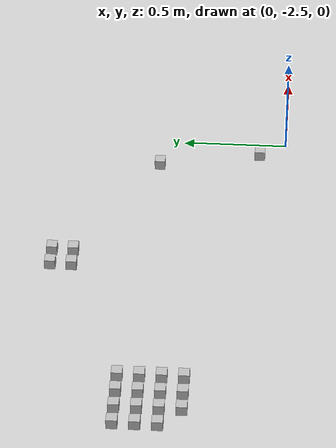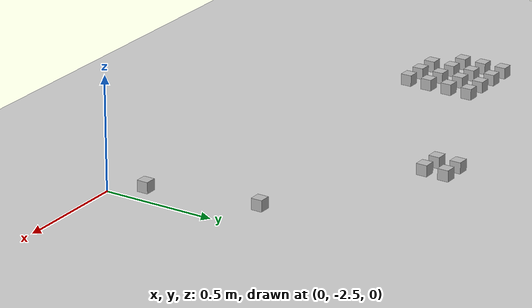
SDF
<sdf version="1.6">
 <world name="default">
  <model name="ground_plane">
   <static>1</static>
   <link name="link">
    <collision name="collision">
     <geometry><plane><normal>0 0 1</normal><size>100 100</size></plane></geometry>
     <surface><friction><ode><mu>100</mu><mu2>50</mu2></ode></friction></surface>
    </collision>
    <visual name="visual">
     <cast_shadows>0</cast_shadows>
     <geometry><plane><normal>0 0 1</normal><size>100 100</size></plane></geometry>
     <material>
      <script><uri>file://media/materials/scripts/gazebo.material</uri><name>Gazebo/Grey</name></script>
     </material>
    </visual>
   </link>
  </model>
  <model name="at33">
   <static>0</static>
   <link name="link">
    <inertial>
     <mass>0.01</mass>
     <inertia><ixx>4e-05</ixx><ixy>0</ixy><ixz>0</ixz><iyy>4e-05</iyy><iyz>0</iyz><izz>4e-05</izz></inertia>
    </inertial>
    <visual name="visual">
     <geometry><box><size>0.05 0.05 0.05</size></box></geometry>
     <material>
      <script>
       <uri>model://at0/materials/scripts</uri>
       <uri>model://at0/materials/textures</uri>
       <name>at0/Diffuse</name>
      </script>
     </material>
    </visual>
    <collision name="collision">
     <geometry><box><size>0.05 0.05 0.05</size></box></geometry>
     <surface><friction><ode><mu>0.8</mu><mu2>0.7</mu2></ode></friction></surface>
    </collision>
   </link>
   <pose>-1.88169 -2.08908 0.025 0 -0 0</pose>
  </model>
  <model name="at34">
   <static>0</static>
   <link name="link">
    <inertial>
     <mass>0.01</mass>
     <inertia><ixx>4e-05</ixx><ixy>0</ixy><ixz>0</ixz><iyy>4e-05</iyy><iyz>0</iyz><izz>4e-05</izz></inertia>
    </inertial>
    <visual name="visual">
     <geometry><box><size>0.05 0.05 0.05</size></box></geometry>
     <material>
      <script>
       <uri>model://at0/materials/scripts</uri>
       <uri>model://at0/materials/textures</uri>
       <name>at0/Diffuse</name>
      </script>
     </material>
    </visual>
    <collision name="collision">
     <geometry><box><size>0.05 0.05 0.05</size></box></geometry>
     <surface><friction><ode><mu>0.8</mu><mu2>0.7</mu2></ode></friction></surface>
    </collision>
   </link>
   <pose>-1.78169 -2.08908 0.025 0 -0 0</pose>
  </model>
  <model name="at35">
   <static>0</static>
   <link name="link">
    <inertial>
     <mass>0.01</mass>
     <inertia><ixx>4e-05</ixx><ixy>0</ixy><ixz>0</ixz><iyy>4e-05</iyy><iyz>0</iyz><izz>4e-05</izz></inertia>
    </inertial>
    <visual name="visual">
     <geometry><box><size>0.05 0.05 0.05</size></box></geometry>
     <material>
      <script>
       <uri>model://at0/materials/scripts</uri>
       <uri>model://at0/materials/textures</uri>
       <name>at0/Diffuse</name>
      </script>
     </material>
    </visual>
    <collision name="collision">
     <geometry><box><size>0.05 0.05 0.05</size></box></geometry>
     <surface><friction><ode><mu>0.8</mu><mu2>0.7</mu2></ode></friction></surface>
    </collision>
   </link>
   <pose>-1.68169 -2.08908 0.025 0 -0 0</pose>
  </model>
  <model name="at36">
   <static>0</static>
   <link name="link">
    <inertial>
     <mass>0.01</mass>
     <inertia><ixx>4e-05</ixx><ixy>0</ixy><ixz>0</ixz><iyy>4e-05</iyy><iyz>0</iyz><izz>4e-05</izz></inertia>
    </inertial>
    <visual name="visual">
     <geometry><box><size>0.05 0.05 0.05</size></box></geometry>
     <material>
      <script>
       <uri>model://at0/materials/scripts</uri>
       <uri>model://at0/materials/textures</uri>
       <name>at0/Diffuse</name>
      </script>
     </material>
    </visual>
    <collision name="collision">
     <geometry><box><size>0.05 0.05 0.05</size></box></geometry>
     <surface><friction><ode><mu>0.8</mu><mu2>0.7</mu2></ode></friction></surface>
    </collision>
   </link>
   <pose>-1.98169 -1.98908 0.025 0 -0 0</pose>
  </model>
  <model name="at37">
   <static>0</static>
   <link name="link">
    <inertial>
     <mass>0.01</mass>
     <inertia><ixx>4e-05</ixx><ixy>0</ixy><ixz>0</ixz><iyy>4e-05</iyy><iyz>0</iyz><izz>4e-05</izz></inertia>
    </inertial>
    <visual name="visual">
     <geometry><box><size>0.05 0.05 0.05</size></box></geometry>
     <material>
      <script>
       <uri>model://at0/materials/scripts</uri>
       <uri>model://at0/materials/textures</uri>
       <name>at0/Diffuse</name>
      </script>
     </material>
    </visual>
    <collision name="collision">
     <geometry><box><size>0.05 0.05 0.05</size></box></geometry>
     <surface><friction><ode><mu>0.8</mu><mu2>0.7</mu2></ode></friction></surface>
    </collision>
   </link>
   <pose>-1.88169 -1.98908 0.025 0 -0 0</pose>
  </model>
  <model name="at38">
   <static>0</static>
   <link name="link">
    <inertial>
     <mass>0.01</mass>
     <inertia><ixx>4e-05</ixx><ixy>0</ixy><ixz>0</ixz><iyy>4e-05</iyy><iyz>0</iyz><izz>4e-05</izz></inertia>
    </inertial>
    <visual name="visual">
     <geometry><box><size>0.05 0.05 0.05</size></box></geometry>
     <material>
      <script>
       <uri>model://at0/materials/scripts</uri>
       <uri>model://at0/materials/textures</uri>
       <name>at0/Diffuse</name>
      </script>
     </material>
    </visual>
    <collision name="collision">
     <geometry><box><size>0.05 0.05 0.05</size></box></geometry>
     <surface><friction><ode><mu>0.8</mu><mu2>0.7</mu2></ode></friction></surface>
    </collision>
   </link>
   <pose>-1.78169 -1.98908 0.025 0 -0 0</pose>
  </model>
  <model name="at39">
   <static>0</static>
   <link name="link">
    <inertial>
     <mass>0.01</mass>
     <inertia><ixx>4e-05</ixx><ixy>0</ixy><ixz>0</ixz><iyy>4e-05</iyy><iyz>0</iyz><izz>4e-05</izz></inertia>
    </inertial>
    <visual name="visual">
     <geometry><box><size>0.05 0.05 0.05</size></box></geometry>
     <material>
      <script>
       <uri>model://at0/materials/scripts</uri>
       <uri>model://at0/materials/textures</uri>
       <name>at0/Diffuse</name>
      </script>
     </material>
    </visual>
    <collision name="collision">
     <geometry><box><size>0.05 0.05 0.05</size></box></geometry>
     <surface><friction><ode><mu>0.8</mu><mu2>0.7</mu2></ode></friction></surface>
    </collision>
   </link>
   <pose>-1.68169 -1.98908 0.025 0 -0 0</pose>
  </model>
  <model name="at40">
   <static>0</static>
   <link name="link">
    <inertial>
     <mass>0.01</mass>
     <inertia><ixx>4e-05</ixx><ixy>0</ixy><ixz>0</ixz><iyy>4e-05</iyy><iyz>0</iyz><izz>4e-05</izz></inertia>
    </inertial>
    <visual name="visual">
     <geometry><box><size>0.05 0.05 0.05</size></box></geometry>
     <material>
      <script>
       <uri>model://at0/materials/scripts</uri>
       <uri>model://at0/materials/textures</uri>
       <name>at0/Diffuse</name>
      </script>
     </material>
    </visual>
    <collision name="collision">
     <geometry><box><size>0.05 0.05 0.05</size></box></geometry>
     <surface><friction><ode><mu>0.8</mu><mu2>0.7</mu2></ode></friction></surface>
    </collision>
   </link>
   <pose>-1.98169 -1.88908 0.025 0 -0 0</pose>
  </model>
  <model name="at41">
   <static>0</static>
   <link name="link">
    <inertial>
     <mass>0.01</mass>
     <inertia><ixx>4e-05</ixx><ixy>0</ixy><ixz>0</ixz><iyy>4e-05</iyy><iyz>0</iyz><izz>4e-05</izz></inertia>
    </inertial>
    <visual name="visual">
     <geometry><box><size>0.05 0.05 0.05</size></box></geometry>
     <material>
      <script>
       <uri>model://at0/materials/scripts</uri>
       <uri>model://at0/materials/textures</uri>
       <name>at0/Diffuse</name>
      </script>
     </material>
    </visual>
    <collision name="collision">
     <geometry><box><size>0.05 0.05 0.05</size></box></geometry>
     <surface><friction><ode><mu>0.8</mu><mu2>0.7</mu2></ode></friction></surface>
    </collision>
   </link>
   <pose>-1.88169 -1.88908 0.025 0 -0 0</pose>
  </model>
  <model name="at42">
   <static>0</static>
   <link name="link">
    <inertial>
     <mass>0.01</mass>
     <inertia><ixx>4e-05</ixx><ixy>0</ixy><ixz>0</ixz><iyy>4e-05</iyy><iyz>0</iyz><izz>4e-05</izz></inertia>
    </inertial>
    <visual name="visual">
     <geometry><box><size>0.05 0.05 0.05</size></box></geometry>
     <material>
      <script>
       <uri>model://at0/materials/scripts</uri>
       <uri>model://at0/materials/textures</uri>
       <name>at0/Diffuse</name>
      </script>
     </material>
    </visual>
    <collision name="collision">
     <geometry><box><size>0.05 0.05 0.05</size></box></geometry>
     <surface><friction><ode><mu>0.8</mu><mu2>0.7</mu2></ode></friction></surface>
    </collision>
   </link>
   <pose>-1.78169 -1.88908 0.025 0 -0 0</pose>
  </model>
  <model name="at43">
   <static>0</static>
   <link name="link">
    <inertial>
     <mass>0.01</mass>
     <inertia><ixx>4e-05</ixx><ixy>0</ixy><ixz>0</ixz><iyy>4e-05</iyy><iyz>0</iyz><izz>4e-05</izz></inertia>
    </inertial>
    <visual name="visual">
     <geometry><box><size>0.05 0.05 0.05</size></box></geometry>
     <material>
      <script>
       <uri>model://at0/materials/scripts</uri>
       <uri>model://at0/materials/textures</uri>
       <name>at0/Diffuse</name>
      </script>
     </material>
    </visual>
    <collision name="collision">
     <geometry><box><size>0.05 0.05 0.05</size></box></geometry>
     <surface><friction><ode><mu>0.8</mu><mu2>0.7</mu2></ode></friction></surface>
    </collision>
   </link>
   <pose>-1.68169 -1.88908 0.025 0 -0 0</pose>
  </model>
  <model name="at44">
   <static>0</static>
   <link name="link">
    <inertial>
     <mass>0.01</mass>
     <inertia><ixx>4e-05</ixx><ixy>0</ixy><ixz>0</ixz><iyy>4e-05</iyy><iyz>0</iyz><izz>4e-05</izz></inertia>
    </inertial>
    <visual name="visual">
     <geometry><box><size>0.05 0.05 0.05</size></box></geometry>
     <material>
      <script>
       <uri>model://at0/materials/scripts</uri>
       <uri>model://at0/materials/textures</uri>
       <name>at0/Diffuse</name>
      </script>
     </material>
    </visual>
    <collision name="collision">
     <geometry><box><size>0.05 0.05 0.05</size></box></geometry>
     <surface><friction><ode><mu>0.8</mu><mu2>0.7</mu2></ode></friction></surface>
    </collision>
   </link>
   <pose>-1.98169 -1.78908 0.025 0 -0 0</pose>
  </model>
  <model name="at45">
   <static>0</static>
   <link name="link">
    <inertial>
     <mass>0.01</mass>
     <inertia><ixx>4e-05</ixx><ixy>0</ixy><ixz>0</ixz><iyy>4e-05</iyy><iyz>0</iyz><izz>4e-05</izz></inertia>
    </inertial>
    <visual name="visual">
     <geometry><box><size>0.05 0.05 0.05</size></box></geometry>
     <material>
      <script>
       <uri>model://at0/materials/scripts</uri>
       <uri>model://at0/materials/textures</uri>
       <name>at0/Diffuse</name>
      </script>
     </material>
    </visual>
    <collision name="collision">
     <geometry><box><size>0.05 0.05 0.05</size></box></geometry>
     <surface><friction><ode><mu>0.8</mu><mu2>0.7</mu2></ode></friction></surface>
    </collision>
   </link>
   <pose>-1.88169 -1.78908 0.025 0 -0 0</pose>
  </model>
  <model name="at46">
   <static>0</static>
   <link name="link">
    <inertial>
     <mass>0.01</mass>
     <inertia><ixx>4e-05</ixx><ixy>0</ixy><ixz>0</ixz><iyy>4e-05</iyy><iyz>0</iyz><izz>4e-05</izz></inertia>
    </inertial>
    <visual name="visual">
     <geometry><box><size>0.05 0.05 0.05</size></box></geometry>
     <material>
      <script>
       <uri>model://at0/materials/scripts</uri>
       <uri>model://at0/materials/textures</uri>
       <name>at0/Diffuse</name>
      </script>
     </material>
    </visual>
    <collision name="collision">
     <geometry><box><size>0.05 0.05 0.05</size></box></geometry>
     <surface><friction><ode><mu>0.8</mu><mu2>0.7</mu2></ode></friction></surface>
    </collision>
   </link>
   <pose>-1.78169 -1.78908 0.025 0 -0 0</pose>
  </model>
  <model name="at47">
   <static>0</static>
   <link name="link">
    <inertial>
     <mass>0.01</mass>
     <inertia><ixx>4e-05</ixx><ixy>0</ixy><ixz>0</ixz><iyy>4e-05</iyy><iyz>0</iyz><izz>4e-05</izz></inertia>
    </inertial>
    <visual name="visual">
     <geometry><box><size>0.05 0.05 0.05</size></box></geometry>
     <material>
      <script>
       <uri>model://at0/materials/scripts</uri>
       <uri>model://at0/materials/textures</uri>
       <name>at0/Diffuse</name>
      </script>
     </material>
    </visual>
    <collision name="collision">
     <geometry><box><size>0.05 0.05 0.05</size></box></geometry>
     <surface><friction><ode><mu>0.8</mu><mu2>0.7</mu2></ode></friction></surface>
    </collision>
   </link>
   <pose>-1.68169 -1.78908 0.025 0 -0 0</pose>
  </model>
  <model name="at84">
   <static>0</static>
   <link name="link">
    <inertial>
     <mass>0.01</mass>
     <inertia><ixx>4e-05</ixx><ixy>0</ixy><ixz>0</ixz><iyy>4e-05</iyy><iyz>0</iyz><izz>4e-05</izz></inertia>
    </inertial>
    <visual name="visual">
     <geometry><box><size>0.05 0.05 0.05</size></box></geometry>
     <material>
      <script>
       <uri>model://at0/materials/scripts</uri>
       <uri>model://at0/materials/textures</uri>
       <name>at0/Diffuse</name>
      </script>
     </material>
    </visual>
    <collision name="collision">
     <geometry><box><size>0.05 0.05 0.05</size></box></geometry>
     <surface><friction><ode><mu>0.8</mu><mu2>0.7</mu2></ode></friction></surface>
    </collision>
   </link>
   <pose>-0.949982 -1.52108 0.025 0 -0 0</pose>
  </model>
  <model name="at85">
   <static>0</static>
   <link name="link">
    <inertial>
     <mass>0.01</mass>
     <inertia><ixx>4e-05</ixx><ixy>0</ixy><ixz>0</ixz><iyy>4e-05</iyy><iyz>0</iyz><izz>4e-05</izz></inertia>
    </inertial>
    <visual name="visual">
     <geometry><box><size>0.05 0.05 0.05</size></box></geometry>
     <material>
      <script>
       <uri>model://at0/materials/scripts</uri>
       <uri>model://at0/materials/textures</uri>
       <name>at0/Diffuse</name>
      </script>
     </material>
    </visual>
    <collision name="collision">
     <geometry><box><size>0.05 0.05 0.05</size></box></geometry>
     <surface><friction><ode><mu>0.8</mu><mu2>0.7</mu2></ode></friction></surface>
    </collision>
   </link>
   <pose>-0.849982 -1.52108 0.025 0 -0 0</pose>
  </model>
  <model name="at86">
   <static>0</static>
   <link name="link">
    <inertial>
     <mass>0.01</mass>
     <inertia><ixx>4e-05</ixx><ixy>0</ixy><ixz>0</ixz><iyy>4e-05</iyy><iyz>0</iyz><izz>4e-05</izz></inertia>
    </inertial>
    <visual name="visual">
     <geometry><box><size>0.05 0.05 0.05</size></box></geometry>
     <material>
      <script>
       <uri>model://at0/materials/scripts</uri>
       <uri>model://at0/materials/textures</uri>
       <name>at0/Diffuse</name>
      </script>
     </material>
    </visual>
    <collision name="collision">
     <geometry><box><size>0.05 0.05 0.05</size></box></geometry>
     <surface><friction><ode><mu>0.8</mu><mu2>0.7</mu2></ode></friction></surface>
    </collision>
   </link>
   <pose>-0.949982 -1.42108 0.025 0 -0 0</pose>
  </model>
  <model name="at87">
   <static>0</static>
   <link name="link">
    <inertial>
     <mass>0.01</mass>
     <inertia><ixx>4e-05</ixx><ixy>0</ixy><ixz>0</ixz><iyy>4e-05</iyy><iyz>0</iyz><izz>4e-05</izz></inertia>
    </inertial>
    <visual name="visual">
     <geometry><box><size>0.05 0.05 0.05</size></box></geometry>
     <material>
      <script>
       <uri>model://at0/materials/scripts</uri>
       <uri>model://at0/materials/textures</uri>
       <name>at0/Diffuse</name>
      </script>
     </material>
    </visual>
    <collision name="collision">
     <geometry><box><size>0.05 0.05 0.05</size></box></geometry>
     <surface><friction><ode><mu>0.8</mu><mu2>0.7</mu2></ode></friction></surface>
    </collision>
   </link>
   <pose>-0.849982 -1.42108 0.025 0 -0 0</pose>
  </model>
  <model name="at100">
   <static>0</static>
   <link name="link">
    <inertial>
     <mass>0.01</mass>
     <inertia><ixx>4e-05</ixx><ixy>0</ixy><ixz>0</ixz><iyy>4e-05</iyy><iyz>0</iyz><izz>4e-05</izz></inertia>
    </inertial>
    <visual name="visual">
     <geometry><box><size>0.05 0.05 0.05</size></box></geometry>
     <material>
      <script>
       <uri>model://at0/materials/scripts</uri>
       <uri>model://at0/materials/textures</uri>
       <name>at0/Diffuse</name>
      </script>
     </material>
    </visual>
    <collision name="collision">
     <geometry><box><size>0.05 0.05 0.05</size></box></geometry>
     <surface><friction><ode><mu>0.8</mu><mu2>0.7</mu2></ode></friction></surface>
    </collision>
   </link>
   <pose>-0.090527 -2.37379 0.025 0 -0 0</pose>
  </model>
  <model name="at105">
   <static>0</static>
   <link name="link">
    <inertial>
     <mass>0.01</mass>
     <inertia><ixx>4e-05</ixx><ixy>0</ixy><ixz>0</ixz><iyy>4e-05</iyy><iyz>0</iyz><izz>4e-05</izz></inertia>
    </inertial>
    <visual name="visual">
     <geometry><box><size>0.05 0.05 0.05</size></box></geometry>
     <material>
      <script>
       <uri>model://at0/materials/scripts</uri>
       <uri>model://at0/materials/textures</uri>
       <name>at0/Diffuse</name>
      </script>
     </material>
    </visual>
    <collision name="collision">
     <geometry><box><size>0.05 0.05 0.05</size></box></geometry>
     <surface><friction><ode><mu>0.8</mu><mu2>0.7</mu2></ode></friction></surface>
    </collision>
   </link>
   <pose>-0.187215 -1.8894 0.025 0 -0 0</pose>
  </model>
 </world>
</sdf>
